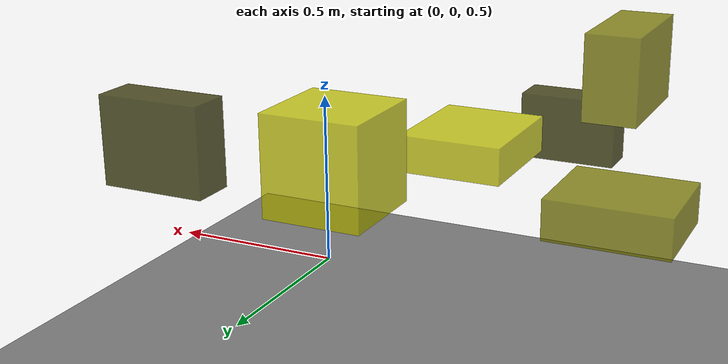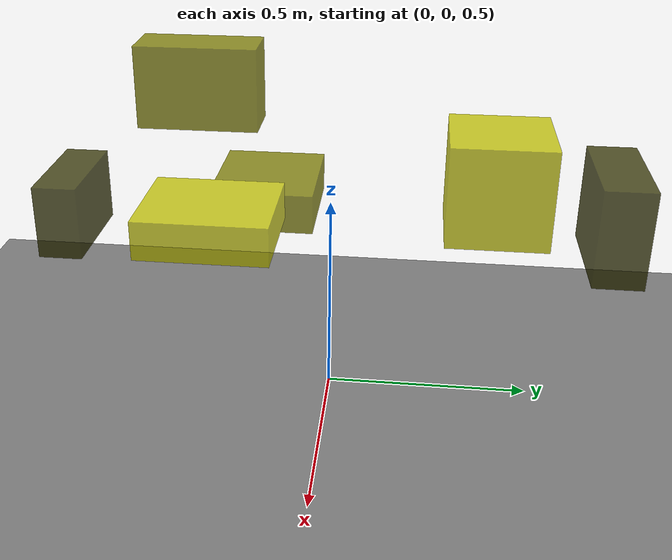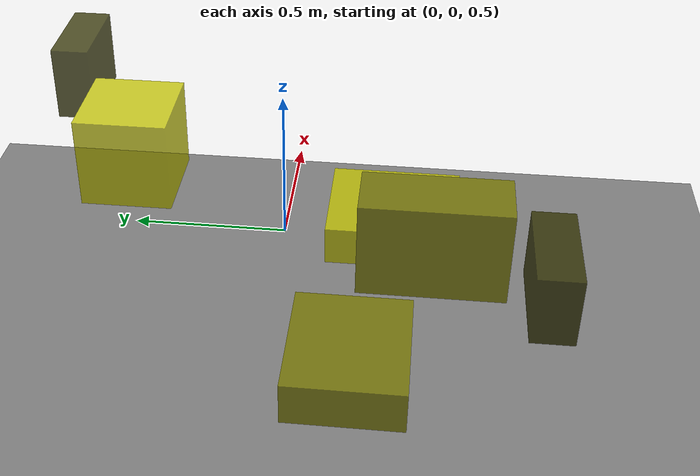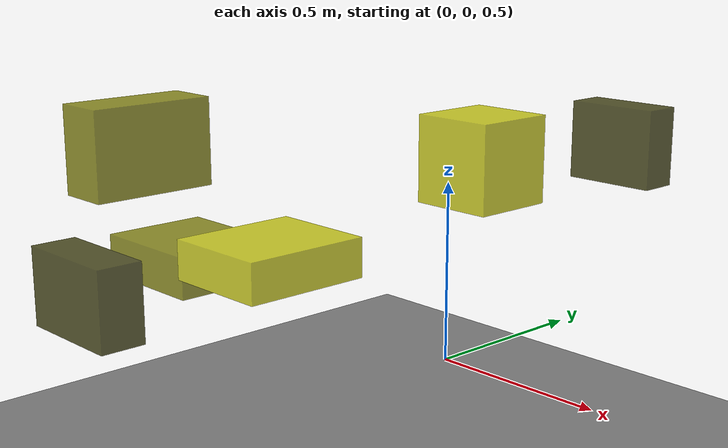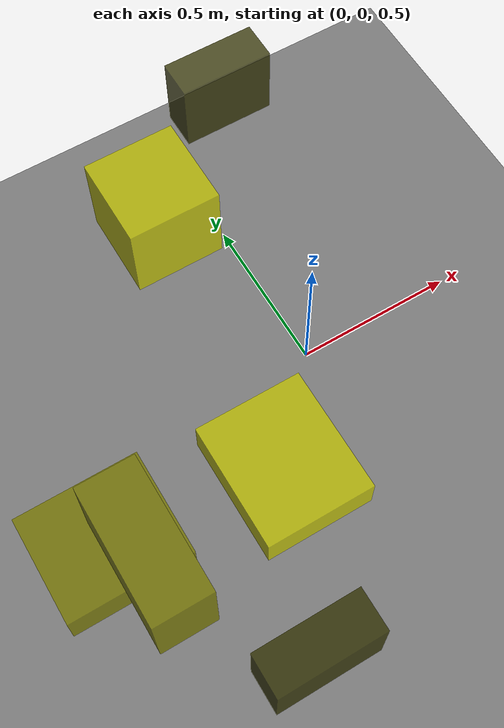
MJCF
<?xml version="1.0"?>
<mujoco model="obstacle_scene">
  <compiler angle="radian" coordinate="local"/>
  <option timestep="0.001" gravity="0 0 -9.81"/>

  <asset>
    <material name="obstacle_mat" rgba="0.8 0.8 0.0 0.8"/>
    <material name="ground_mat" rgba="0.5 0.5 0.5 1"/>
  </asset>

  <worldbody>
    <!-- Ground plane -->
    <geom name="ground" type="plane" size="3 3 0.1" material="ground_mat"/>

    <!-- Obstacles -->
    <body name="obstacle_0" pos="-0.483547 -0.819221 0.751375">
      <geom name="obs_0" type="box" size="0.159293 0.063970 0.109213" rgba="0.2 0.2 0.0 0.8"/>
    </body>
    <body name="obstacle_1" pos="-0.751652 -0.473575 1.056592">
      <geom name="obs_1" type="box" size="0.080065 0.187646 0.128501" rgba="0.5 0.5 0.0 0.8"/>
    </body>
    <body name="obstacle_2" pos="-0.256081 0.412555 0.969830">
      <geom name="obs_2" type="box" size="0.133400 0.133035 0.135338" rgba="0.8 0.8 0.0 0.8"/>
    </body>
    <body name="obstacle_3" pos="0.083951 0.644699 1.036651">
      <geom name="obs_3" type="box" size="0.136855 0.056390 0.114174" rgba="0.2 0.2 0.0 0.8"/>
    </body>
    <body name="obstacle_4" pos="-0.807299 -0.273145 0.682631">
      <geom name="obs_4" type="box" size="0.187182 0.162484 0.062467" rgba="0.5 0.5 0.0 0.8"/>
    </body>
    <body name="obstacle_5" pos="-0.307700 -0.363855 0.795461">
      <geom name="obs_5" type="box" size="0.159929 0.187853 0.056885" rgba="0.8 0.8 0.0 0.8"/>
    </body>
  </worldbody>
</mujoco>
